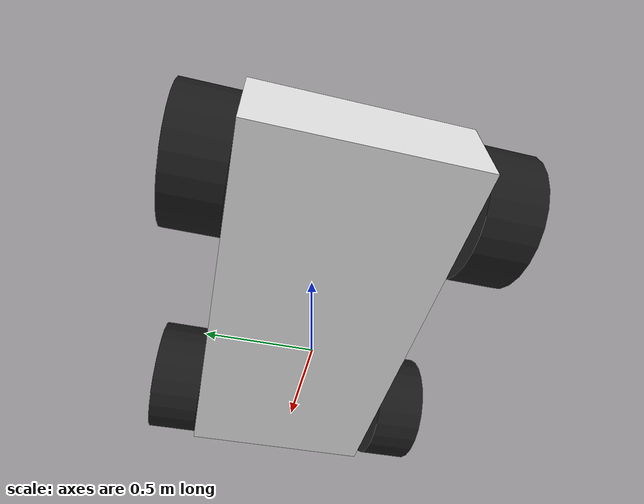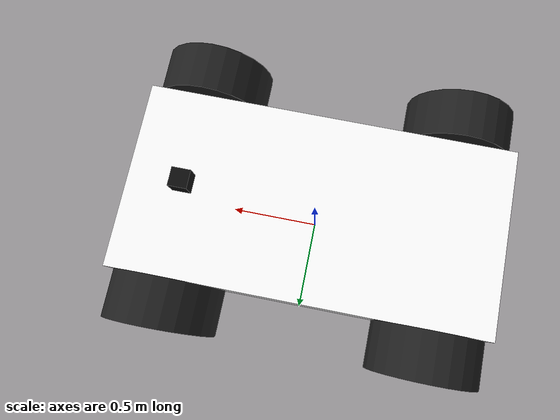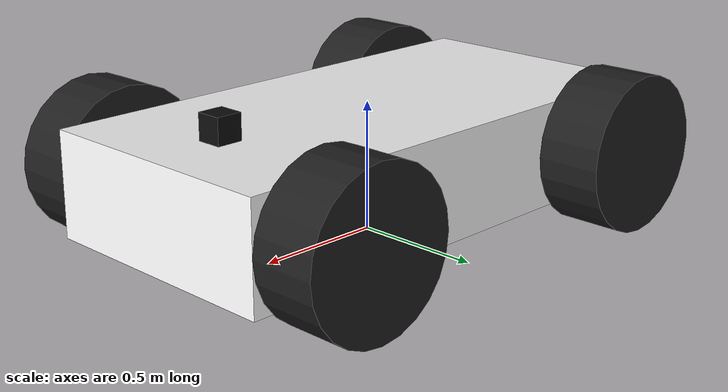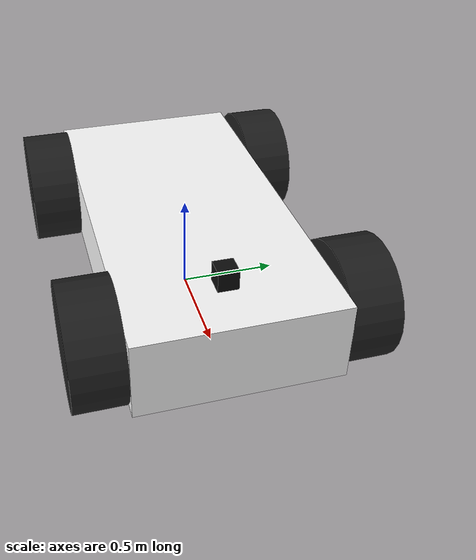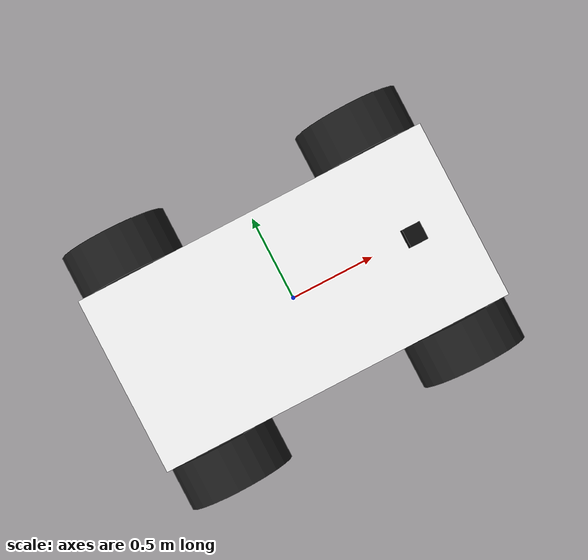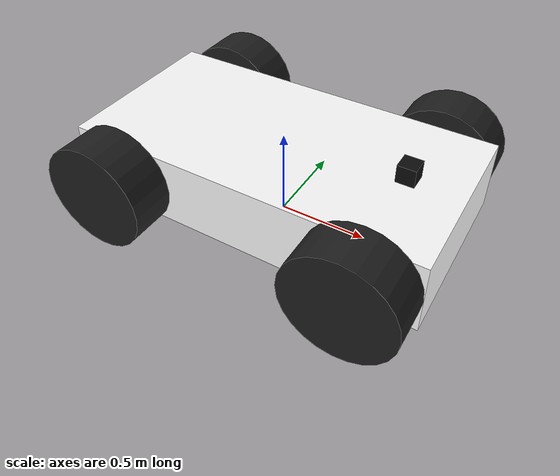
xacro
<?xml version="1.0"?>
<robot name="follower_vehicle" xmlns:xacro="http://ros.org/wiki/xacro">
    <xacro:property name="r" value="0.3"/>
    <xacro:property name="w" value="0.25"/>

    <!-- Base Footprint             -->

    <link name="base_footprint"/>

    <joint name="base_joint" type="fixed">
        <parent link="base_footprint"/>
        <child link="chassis"/>
        <origin rpy="0 0 0" xyz="0 0 0.3"/>
    </joint>

    <material name="white">
        <color rgba="1.0 1.0 1.0 1.0"/>
    </material>

    <material name="black">
        <color rgba="0.05 0.05 0.05 1.0"/>
    </material>

    <link name="chassis">
        <visual>
            <geometry>
                <box size="2 1 0.4"/>
            </geometry>
            <material name="white"/>
        </visual>

        <collision>
            <geometry>
                <box size="2 1 0.4"/>
            </geometry>
        </collision>

        <inertial>
            <mass value="5.0"/>
            <!-- Box inertia: Ixx=(m/12)(y^2+z^2), Iyy=(m/12)(x^2+z^2), Izz=(m/12)(x^2+y^2) -->
            <inertia
                ixx="0.4833"
                ixy="0"
                ixz="0"
                iyy="1.7333"
                iyz="0"
                izz="2.0833"/>
        </inertial>
    </link>

    <!-- Wheel Macro -->
    <xacro:macro name="wheel" params="name x y mu">
        <link name="${name}">
        <visual>
            <geometry>
                <cylinder radius="${r}" length="${w}"/>
            </geometry>
        </visual>
        <collision>
            <geometry>
                <cylinder radius="${r}" length="${w}"/>
            </geometry>
        </collision>
        <inertial>
            <mass value="0.5"/>
            <inertia ixx="0.05" ixy="0" ixz="0" iyy="0.05" iyz="0" izz="0.03"/>
        </inertial>
        </link>

        <joint name="${name}_joint" type="continuous">
            <parent link="chassis"/>
            <child link="${name}"/>
            <origin xyz="${x} ${y} 0" rpy="1.5708 0 0"/>
            <axis xyz="0 0 1"/>
        </joint>
        <gazebo reference="${name}">
            <material>Gazebo/Black</material>
            <mu1>${mu}</mu1>
            <mu2>${mu}</mu2>
        </gazebo>
    </xacro:macro>

    <!-- Rear Wheels -->
    <xacro:wheel name="rear_wheel_right" x="-0.7" y="0.625" mu="10"/>
    <xacro:wheel name="rear_wheel_left" x="-0.7" y="-0.625" mu="10"/>
    <!-- Front Wheels -->
    <xacro:wheel name="front_wheel_right" x="0.7" y="0.625" mu="5"/>
    <xacro:wheel name="front_wheel_left" x="0.7" y="-0.625" mu="5"/>

    <!-- Depth Camera Link -->
    <link name="depth_camera_link">
        <visual>
            <geometry>
                <box size="0.1 0.1 0.1"/>
            </geometry>
            <material name="black"/>
        </visual>
        <collision>
            <geometry>
                <box size="0.1 0.1 0.1"/>
            </geometry>
        </collision>
        <inertial>
            <mass value="0.1"/>
            <inertia ixx="0.000166667" ixy="0" ixz="0" iyy="0.000166667" iyz="0" izz="0.000166667"/>
        </inertial>
    </link>

    <!-- Camera Joint (Fixed) -->
    <joint name="chassis_depth_camera_fixed" type="fixed">
        <parent link="chassis"/>
        <child link="depth_camera_link"/>
        <origin rpy="0 0 0" xyz="0.7 0 0.25"/>
    </joint>

    <gazebo reference="depth_camera_link">
        <material>Gazebo/Black</material>
        <sensor name="depth_camera" type="depth">
            <update_rate>30.0</update_rate>
            <camera>
                <horizontal_fov>1.047</horizontal_fov>
                <image>
                    <width>320</width>
                    <height>240</height>
                    <format>R8G8B8</format>
                </image>
                <clip>
                    <near>0.1</near>
                    <far>100</far>
                </clip>
            </camera>
            <plugin name="depth_camera_controller" filename="libgazebo_ros_camera.so">
                <alwaysOn>true</alwaysOn>
                <updateRate>30.0</updateRate>
                <cameraName>depth_camera</cameraName>
                <imageTopicName>depth/image_raw</imageTopicName>
                <cameraInfoTopicName>depth/camera_info</cameraInfoTopicName>
                <frameName>depth_camera_link</frameName>
            </plugin>
        </sensor>
    </gazebo>

    <gazebo>
        <plugin name="planar_move" filename="libgazebo_ros_planar_move.so">

            <commandTopic>cmd_vel</commandTopic>
            <odometryTopic>odom</odometryTopic>

            <odometryFrame>odom</odometryFrame>
            <robotBaseFrame>base_footprint</robotBaseFrame>

            <odometryRate>50</odometryRate>
            <cmdTimeout>0.5</cmdTimeout>

            <robotNamespace>/</robotNamespace>

        </plugin>
    </gazebo>

</robot>
